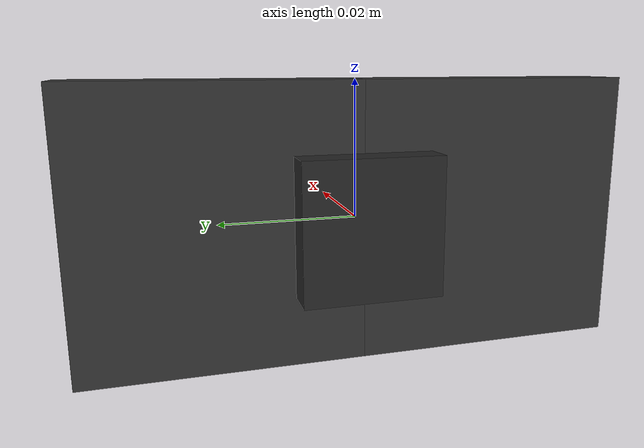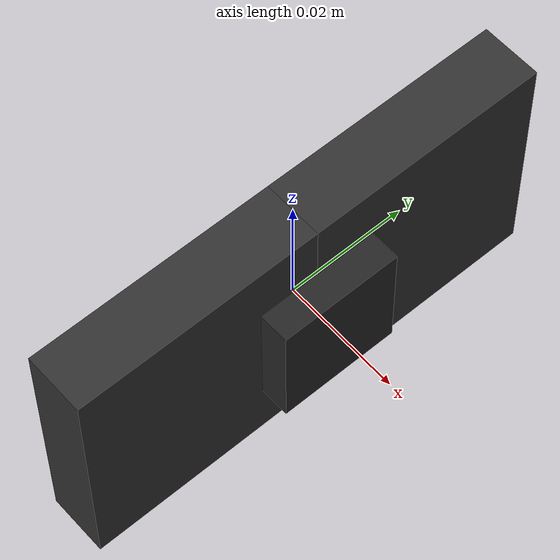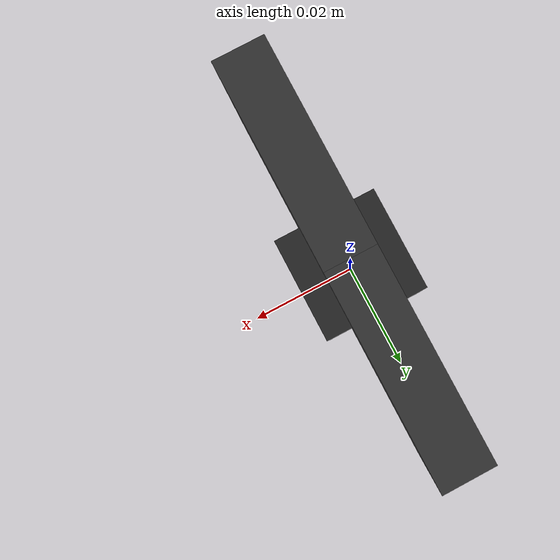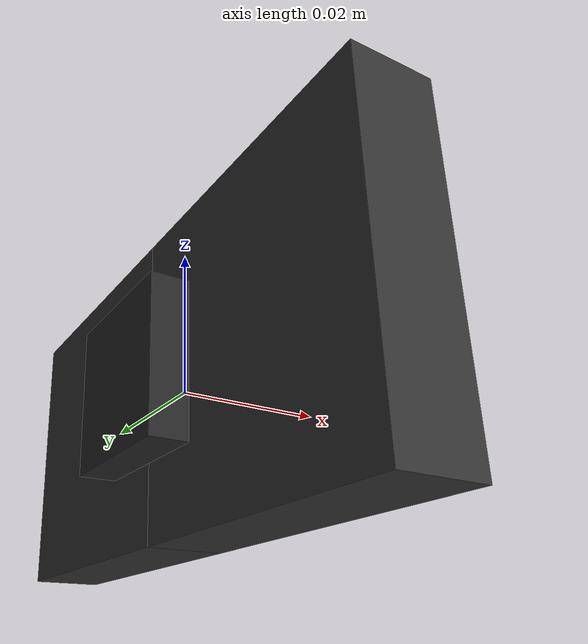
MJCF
<mujoco>
    <default>
        <default class="geom">
            <geom friction="1 0.5 0.5" contype="1" conaffinity="1" />
        </default>
        <default class="joint">
            <joint damping="2" />
        </default>
    </default>

    <worldbody>
        <body name="Gripper" pos="0 0 0">
            <!-- Rigid palm block attached to the wrist chain. -->
            <geom type="box" pos="0 0 0" size="0.01 0.01 0.01" rgba="0.15 0.15 0.15 1" contype="0" conaffinity="0" />

            <body name="left_finger" pos="0 -0.02 0">
                <!-- Left jaw: single translational DOF along local +Y. -->
                <joint name="left_slide" type="slide" axis="0 1 0" range="-0.02 0.0" />
                <geom type="box" size="0.005 0.02 0.02" pos="0 0 0" rgba="0.2 0.2 0.2 1" />
            </body>

            <body name="right_finger" pos="0 0.02 0">
                <!-- Right jaw: mirrored slide axis for parallel closing motion. -->
                <joint name="right_slide" type="slide" axis="0 -1 0" range="-0.02 0.0" />
                <geom type="box" size="0.005 0.02 0.02" pos="0 0 0" rgba="0.2 0.2 0.2 1" />
            </body>
        </body>
    </worldbody>

    <actuator>
        <position joint="left_slide" name="left_slide_ctrl" kp="100" ctrlrange="-0.02 0.0" />
        <position joint="right_slide" name="right_slide_ctrl" kp="100" ctrlrange="-0.02 0.0" />
    </actuator>
</mujoco>
